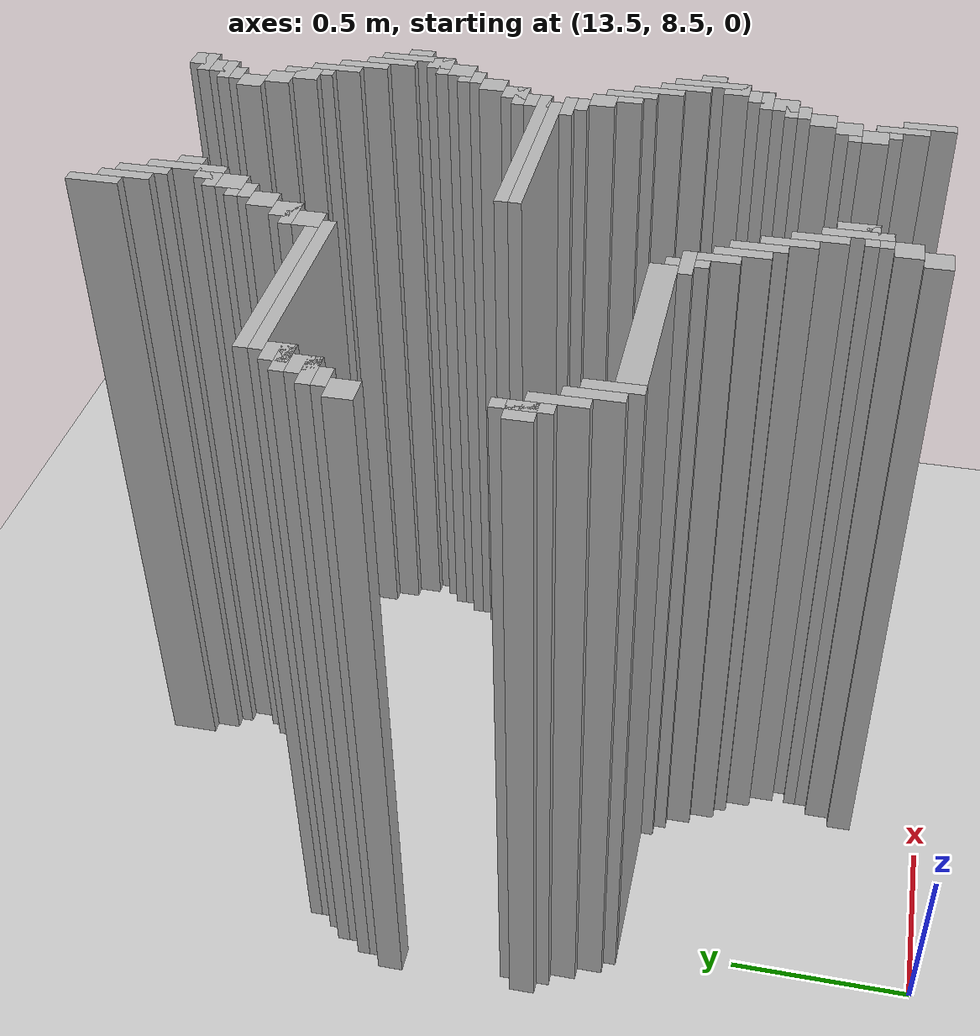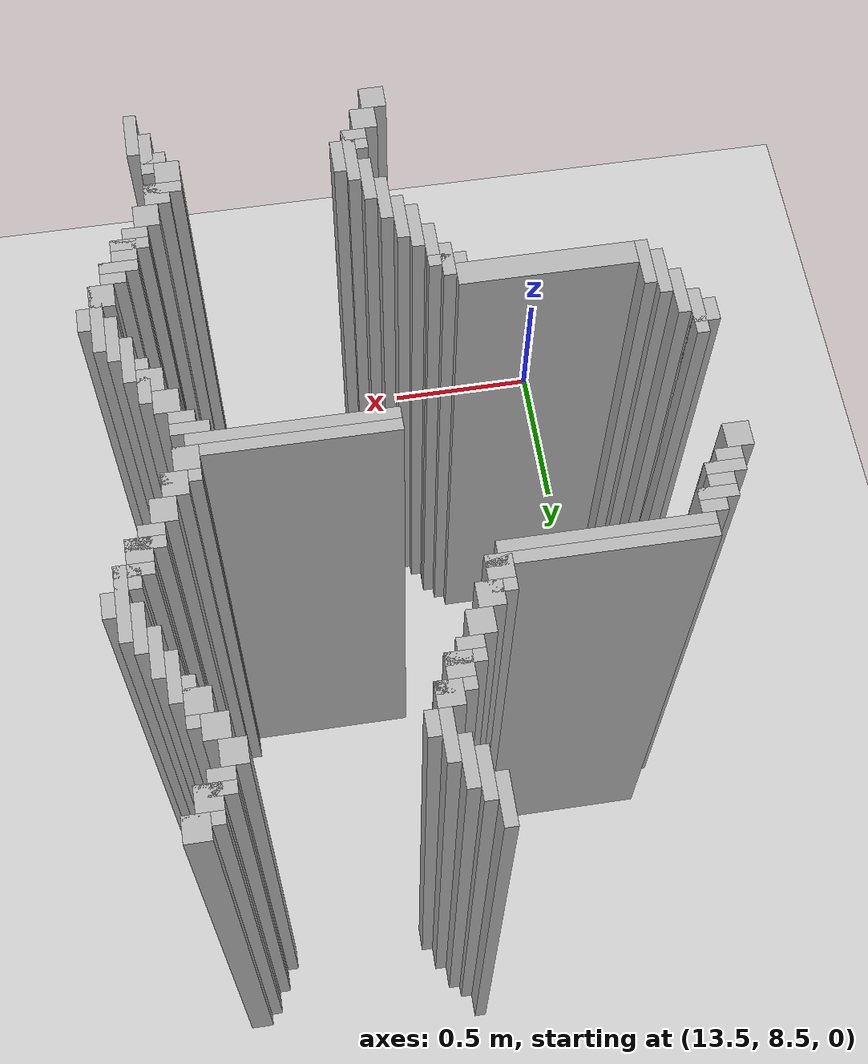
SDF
<sdf version="1.6">
 <world name="slam_world">
  <model name="ground_plane">
   <static>true</static>
   <link name="link">
    <collision name="collision">
     <geometry><plane><normal>0 0 1</normal><size>100 100</size></plane></geometry>
    </collision>
    <visual name="visual">
     <geometry><plane><normal>0 0 1</normal><size>100 100</size></plane></geometry>
     <material>
      <ambient>0.8 0.8 0.8 1</ambient>
      <diffuse>0.8 0.8 0.8 1</diffuse>
      <specular>0.8 0.8 0.8 1</specular>
     </material>
    </visual>
   </link>
  </model>
  <model name="wall_2226">
   <static>true</static>
   <pose>14.077726218097448 10.82366589327146 1.0 0 0 0</pose>
   <link name="link">
    <collision name="collision">
     <geometry><box><size>0.03480278422273782 0.13921113689095127 2.0</size></box></geometry>
    </collision>
    <visual name="visual">
     <geometry><box><size>0.03480278422273782 0.13921113689095127 2.0</size></box></geometry>
     <material><ambient>0.5 0.5 0.5 1</ambient><diffuse>0.7 0.7 0.7 1</diffuse></material>
    </visual>
   </link>
  </model>
  <model name="wall_2241">
   <static>true</static>
   <pose>14.112529002320185 10.754060324825986 1.0 0 0 0</pose>
   <link name="link">
    <collision name="collision">
     <geometry><box><size>0.03480278422273782 0.13921113689095127 2.0</size></box></geometry>
    </collision>
    <visual name="visual">
     <geometry><box><size>0.03480278422273782 0.13921113689095127 2.0</size></box></geometry>
     <material><ambient>0.5 0.5 0.5 1</ambient><diffuse>0.7 0.7 0.7 1</diffuse></material>
    </visual>
   </link>
  </model>
  <model name="wall_2242">
   <static>true</static>
   <pose>14.791183294663572 10.788863109048723 1.0 0 0 0</pose>
   <link name="link">
    <collision name="collision">
     <geometry><box><size>0.06960556844547564 0.06960556844547564 2.0</size></box></geometry>
    </collision>
    <visual name="visual">
     <geometry><box><size>0.06960556844547564 0.06960556844547564 2.0</size></box></geometry>
     <material><ambient>0.5 0.5 0.5 1</ambient><diffuse>0.7 0.7 0.7 1</diffuse></material>
    </visual>
   </link>
  </model>
  <model name="wall_2256">
   <static>true</static>
   <pose>14.147331786542923 10.719257540603248 1.0 0 0 0</pose>
   <link name="link">
    <collision name="collision">
     <geometry><box><size>0.03480278422273782 0.13921113689095127 2.0</size></box></geometry>
    </collision>
    <visual name="visual">
     <geometry><box><size>0.03480278422273782 0.13921113689095127 2.0</size></box></geometry>
     <material><ambient>0.5 0.5 0.5 1</ambient><diffuse>0.7 0.7 0.7 1</diffuse></material>
    </visual>
   </link>
  </model>
  <model name="wall_2257">
   <static>true</static>
   <pose>14.773781902552203 10.771461716937354 1.0 0 0 0</pose>
   <link name="link">
    <collision name="collision">
     <geometry><box><size>0.10440835266821345 0.03480278422273782 2.0</size></box></geometry>
    </collision>
    <visual name="visual">
     <geometry><box><size>0.10440835266821345 0.03480278422273782 2.0</size></box></geometry>
     <material><ambient>0.5 0.5 0.5 1</ambient><diffuse>0.7 0.7 0.7 1</diffuse></material>
    </visual>
   </link>
  </model>
  <model name="wall_2264">
   <static>true</static>
   <pose>14.756380510440835 10.719257540603248 1.0 0 0 0</pose>
   <link name="link">
    <collision name="collision">
     <geometry><box><size>0.06960556844547564 0.06960556844547564 2.0</size></box></geometry>
    </collision>
    <visual name="visual">
     <geometry><box><size>0.06960556844547564 0.06960556844547564 2.0</size></box></geometry>
     <material><ambient>0.5 0.5 0.5 1</ambient><diffuse>0.7 0.7 0.7 1</diffuse></material>
    </visual>
   </link>
  </model>
  <model name="wall_2278">
   <static>true</static>
   <pose>14.18213457076566 10.614849187935034 1.0 0 0 0</pose>
   <link name="link">
    <collision name="collision">
     <geometry><box><size>0.03480278422273782 0.2088167053364269 2.0</size></box></geometry>
    </collision>
    <visual name="visual">
     <geometry><box><size>0.03480278422273782 0.2088167053364269 2.0</size></box></geometry>
     <material><ambient>0.5 0.5 0.5 1</ambient><diffuse>0.7 0.7 0.7 1</diffuse></material>
    </visual>
   </link>
  </model>
  <model name="wall_2279">
   <static>true</static>
   <pose>14.738979118329466 10.70185614849188 1.0 0 0 0</pose>
   <link name="link">
    <collision name="collision">
     <geometry><box><size>0.10440835266821345 0.03480278422273782 2.0</size></box></geometry>
    </collision>
    <visual name="visual">
     <geometry><box><size>0.10440835266821345 0.03480278422273782 2.0</size></box></geometry>
     <material><ambient>0.5 0.5 0.5 1</ambient><diffuse>0.7 0.7 0.7 1</diffuse></material>
    </visual>
   </link>
  </model>
  <model name="wall_2286">
   <static>true</static>
   <pose>14.721577726218097 10.66705336426914 1.0 0 0 0</pose>
   <link name="link">
    <collision name="collision">
     <geometry><box><size>0.06960556844547564 0.03480278422273782 2.0</size></box></geometry>
    </collision>
    <visual name="visual">
     <geometry><box><size>0.06960556844547564 0.03480278422273782 2.0</size></box></geometry>
     <material><ambient>0.5 0.5 0.5 1</ambient><diffuse>0.7 0.7 0.7 1</diffuse></material>
    </visual>
   </link>
  </model>
  <model name="wall_2300">
   <static>true</static>
   <pose>14.2169373549884 10.614849187935034 1.0 0 0 0</pose>
   <link name="link">
    <collision name="collision">
     <geometry><box><size>0.03480278422273782 0.06960556844547564 2.0</size></box></geometry>
    </collision>
    <visual name="visual">
     <geometry><box><size>0.03480278422273782 0.06960556844547564 2.0</size></box></geometry>
     <material><ambient>0.5 0.5 0.5 1</ambient><diffuse>0.7 0.7 0.7 1</diffuse></material>
    </visual>
   </link>
  </model>
  <model name="wall_2301">
   <static>true</static>
   <pose>14.68677494199536 10.614849187935034 1.0 0 0 0</pose>
   <link name="link">
    <collision name="collision">
     <geometry><box><size>0.06960556844547564 0.06960556844547564 2.0</size></box></geometry>
    </collision>
    <visual name="visual">
     <geometry><box><size>0.06960556844547564 0.06960556844547564 2.0</size></box></geometry>
     <material><ambient>0.5 0.5 0.5 1</ambient><diffuse>0.7 0.7 0.7 1</diffuse></material>
    </visual>
   </link>
  </model>
  <model name="wall_2315">
   <static>true</static>
   <pose>14.164733178654291 10.54524361948956 1.0 0 0 0</pose>
   <link name="link">
    <collision name="collision">
     <geometry><box><size>0.06960556844547564 0.06960556844547564 2.0</size></box></geometry>
    </collision>
    <visual name="visual">
     <geometry><box><size>0.06960556844547564 0.06960556844547564 2.0</size></box></geometry>
     <material><ambient>0.5 0.5 0.5 1</ambient><diffuse>0.7 0.7 0.7 1</diffuse></material>
    </visual>
   </link>
  </model>
  <model name="wall_2316">
   <static>true</static>
   <pose>14.721577726218097 10.54524361948956 1.0 0 0 0</pose>
   <link name="link">
    <collision name="collision">
     <geometry><box><size>0.06960556844547564 0.06960556844547564 2.0</size></box></geometry>
    </collision>
    <visual name="visual">
     <geometry><box><size>0.06960556844547564 0.06960556844547564 2.0</size></box></geometry>
     <material><ambient>0.5 0.5 0.5 1</ambient><diffuse>0.7 0.7 0.7 1</diffuse></material>
    </visual>
   </link>
  </model>
  <model name="wall_2330">
   <static>true</static>
   <pose>14.147331786542923 10.52784222737819 1.0 0 0 0</pose>
   <link name="link">
    <collision name="collision">
     <geometry><box><size>0.10440835266821345 0.03480278422273782 2.0</size></box></geometry>
    </collision>
    <visual name="visual">
     <geometry><box><size>0.10440835266821345 0.03480278422273782 2.0</size></box></geometry>
     <material><ambient>0.5 0.5 0.5 1</ambient><diffuse>0.7 0.7 0.7 1</diffuse></material>
    </visual>
   </link>
  </model>
  <model name="wall_2331">
   <static>true</static>
   <pose>14.773781902552203 10.475638051044083 1.0 0 0 0</pose>
   <link name="link">
    <collision name="collision">
     <geometry><box><size>0.03480278422273782 0.13921113689095127 2.0</size></box></geometry>
    </collision>
    <visual name="visual">
     <geometry><box><size>0.03480278422273782 0.13921113689095127 2.0</size></box></geometry>
     <material><ambient>0.5 0.5 0.5 1</ambient><diffuse>0.7 0.7 0.7 1</diffuse></material>
    </visual>
   </link>
  </model>
  <model name="wall_2345">
   <static>true</static>
   <pose>14.129930394431554 10.475638051044083 1.0 0 0 0</pose>
   <link name="link">
    <collision name="collision">
     <geometry><box><size>0.06960556844547564 0.06960556844547564 2.0</size></box></geometry>
    </collision>
    <visual name="visual">
     <geometry><box><size>0.06960556844547564 0.06960556844547564 2.0</size></box></geometry>
     <material><ambient>0.5 0.5 0.5 1</ambient><diffuse>0.7 0.7 0.7 1</diffuse></material>
    </visual>
   </link>
  </model>
  <model name="wall_2346">
   <static>true</static>
   <pose>14.756380510440835 10.475638051044083 1.0 0 0 0</pose>
   <link name="link">
    <collision name="collision">
     <geometry><box><size>0.06960556844547564 0.06960556844547564 2.0</size></box></geometry>
    </collision>
    <visual name="visual">
     <geometry><box><size>0.06960556844547564 0.06960556844547564 2.0</size></box></geometry>
     <material><ambient>0.5 0.5 0.5 1</ambient><diffuse>0.7 0.7 0.7 1</diffuse></material>
    </visual>
   </link>
  </model>
  <model name="wall_2360">
   <static>true</static>
   <pose>14.112529002320185 10.458236658932714 1.0 0 0 0</pose>
   <link name="link">
    <collision name="collision">
     <geometry><box><size>0.10440835266821345 0.03480278422273782 2.0</size></box></geometry>
    </collision>
    <visual name="visual">
     <geometry><box><size>0.10440835266821345 0.03480278422273782 2.0</size></box></geometry>
     <material><ambient>0.5 0.5 0.5 1</ambient><diffuse>0.7 0.7 0.7 1</diffuse></material>
    </visual>
   </link>
  </model>
  <model name="wall_2361">
   <static>true</static>
   <pose>14.80858468677494 10.406032482598608 1.0 0 0 0</pose>
   <link name="link">
    <collision name="collision">
     <geometry><box><size>0.03480278422273782 0.13921113689095127 2.0</size></box></geometry>
    </collision>
    <visual name="visual">
     <geometry><box><size>0.03480278422273782 0.13921113689095127 2.0</size></box></geometry>
     <material><ambient>0.5 0.5 0.5 1</ambient><diffuse>0.7 0.7 0.7 1</diffuse></material>
    </visual>
   </link>
  </model>
  <model name="wall_2366">
   <static>true</static>
   <pose>14.095127610208817 10.423433874709977 1.0 0 0 0</pose>
   <link name="link">
    <collision name="collision">
     <geometry><box><size>0.06960556844547564 0.03480278422273782 2.0</size></box></geometry>
    </collision>
    <visual name="visual">
     <geometry><box><size>0.06960556844547564 0.03480278422273782 2.0</size></box></geometry>
     <material><ambient>0.5 0.5 0.5 1</ambient><diffuse>0.7 0.7 0.7 1</diffuse></material>
    </visual>
   </link>
  </model>
  <model name="wall_2380">
   <static>true</static>
   <pose>14.06032482598608 10.37122969837587 1.0 0 0 0</pose>
   <link name="link">
    <collision name="collision">
     <geometry><box><size>0.06960556844547564 0.06960556844547564 2.0</size></box></geometry>
    </collision>
    <visual name="visual">
     <geometry><box><size>0.06960556844547564 0.06960556844547564 2.0</size></box></geometry>
     <material><ambient>0.5 0.5 0.5 1</ambient><diffuse>0.7 0.7 0.7 1</diffuse></material>
    </visual>
   </link>
  </model>
  <model name="wall_2381">
   <static>true</static>
   <pose>14.84338747099768 10.336426914153131 1.0 0 0 0</pose>
   <link name="link">
    <collision name="collision">
     <geometry><box><size>0.03480278422273782 0.13921113689095127 2.0</size></box></geometry>
    </collision>
    <visual name="visual">
     <geometry><box><size>0.03480278422273782 0.13921113689095127 2.0</size></box></geometry>
     <material><ambient>0.5 0.5 0.5 1</ambient><diffuse>0.7 0.7 0.7 1</diffuse></material>
    </visual>
   </link>
  </model>
  <model name="wall_2395">
   <static>true</static>
   <pose>14.02552204176334 10.301624129930394 1.0 0 0 0</pose>
   <link name="link">
    <collision name="collision">
     <geometry><box><size>0.06960556844547564 0.06960556844547564 2.0</size></box></geometry>
    </collision>
    <visual name="visual">
     <geometry><box><size>0.06960556844547564 0.06960556844547564 2.0</size></box></geometry>
     <material><ambient>0.5 0.5 0.5 1</ambient><diffuse>0.7 0.7 0.7 1</diffuse></material>
    </visual>
   </link>
  </model>
  <model name="wall_2396">
   <static>true</static>
   <pose>14.878190255220417 10.266821345707656 1.0 0 0 0</pose>
   <link name="link">
    <collision name="collision">
     <geometry><box><size>0.03480278422273782 0.13921113689095127 2.0</size></box></geometry>
    </collision>
    <visual name="visual">
     <geometry><box><size>0.03480278422273782 0.13921113689095127 2.0</size></box></geometry>
     <material><ambient>0.5 0.5 0.5 1</ambient><diffuse>0.7 0.7 0.7 1</diffuse></material>
    </visual>
   </link>
  </model>
  <model name="wall_2410">
   <static>true</static>
   <pose>14.008120649651971 10.284222737819025 1.0 0 0 0</pose>
   <link name="link">
    <collision name="collision">
     <geometry><box><size>0.10440835266821345 0.03480278422273782 2.0</size></box></geometry>
    </collision>
    <visual name="visual">
     <geometry><box><size>0.10440835266821345 0.03480278422273782 2.0</size></box></geometry>
     <material><ambient>0.5 0.5 0.5 1</ambient><diffuse>0.7 0.7 0.7 1</diffuse></material>
    </visual>
   </link>
  </model>
  <model name="wall_2411">
   <static>true</static>
   <pose>14.912993039443155 10.19721577726218 1.0 0 0 0</pose>
   <link name="link">
    <collision name="collision">
     <geometry><box><size>0.03480278422273782 0.2088167053364269 2.0</size></box></geometry>
    </collision>
    <visual name="visual">
     <geometry><box><size>0.03480278422273782 0.2088167053364269 2.0</size></box></geometry>
     <material><ambient>0.5 0.5 0.5 1</ambient><diffuse>0.7 0.7 0.7 1</diffuse></material>
    </visual>
   </link>
  </model>
  <model name="wall_2416">
   <static>true</static>
   <pose>13.990719257540603 10.232018561484919 1.0 0 0 0</pose>
   <link name="link">
    <collision name="collision">
     <geometry><box><size>0.06960556844547564 0.06960556844547564 2.0</size></box></geometry>
    </collision>
    <visual name="visual">
     <geometry><box><size>0.06960556844547564 0.06960556844547564 2.0</size></box></geometry>
     <material><ambient>0.5 0.5 0.5 1</ambient><diffuse>0.7 0.7 0.7 1</diffuse></material>
    </visual>
   </link>
  </model>
  <model name="wall_2431">
   <static>true</static>
   <pose>13.729698375870068 10.214617169373549 1.0 0 0 0</pose>
   <link name="link">
    <collision name="collision">
     <geometry><box><size>0.5916473317865429 0.03480278422273782 2.0</size></box></geometry>
    </collision>
    <visual name="visual">
     <geometry><box><size>0.5916473317865429 0.03480278422273782 2.0</size></box></geometry>
     <material><ambient>0.5 0.5 0.5 1</ambient><diffuse>0.7 0.7 0.7 1</diffuse></material>
    </visual>
   </link>
  </model>
  <model name="wall_2432">
   <static>true</static>
   <pose>14.947795823665892 10.19721577726218 1.0 0 0 0</pose>
   <link name="link">
    <collision name="collision">
     <geometry><box><size>0.03480278422273782 0.06960556844547564 2.0</size></box></geometry>
    </collision>
    <visual name="visual">
     <geometry><box><size>0.03480278422273782 0.06960556844547564 2.0</size></box></geometry>
     <material><ambient>0.5 0.5 0.5 1</ambient><diffuse>0.7 0.7 0.7 1</diffuse></material>
    </visual>
   </link>
  </model>
  <model name="wall_2437">
   <static>true</static>
   <pose>13.7122969837587 10.179814385150811 1.0 0 0 0</pose>
   <link name="link">
    <collision name="collision">
     <geometry><box><size>0.5568445475638051 0.03480278422273782 2.0</size></box></geometry>
    </collision>
    <visual name="visual">
     <geometry><box><size>0.5568445475638051 0.03480278422273782 2.0</size></box></geometry>
     <material><ambient>0.5 0.5 0.5 1</ambient><diffuse>0.7 0.7 0.7 1</diffuse></material>
    </visual>
   </link>
  </model>
  <model name="wall_2450">
   <static>true</static>
   <pose>13.433874709976797 10.127610208816705 1.0 0 0 0</pose>
   <link name="link">
    <collision name="collision">
     <geometry><box><size>0.06960556844547564 0.06960556844547564 2.0</size></box></geometry>
    </collision>
    <visual name="visual">
     <geometry><box><size>0.06960556844547564 0.06960556844547564 2.0</size></box></geometry>
     <material><ambient>0.5 0.5 0.5 1</ambient><diffuse>0.7 0.7 0.7 1</diffuse></material>
    </visual>
   </link>
  </model>
  <model name="wall_2451">
   <static>true</static>
   <pose>14.895591647331786 10.127610208816705 1.0 0 0 0</pose>
   <link name="link">
    <collision name="collision">
     <geometry><box><size>0.06960556844547564 0.06960556844547564 2.0</size></box></geometry>
    </collision>
    <visual name="visual">
     <geometry><box><size>0.06960556844547564 0.06960556844547564 2.0</size></box></geometry>
     <material><ambient>0.5 0.5 0.5 1</ambient><diffuse>0.7 0.7 0.7 1</diffuse></material>
    </visual>
   </link>
  </model>
  <model name="wall_2464">
   <static>true</static>
   <pose>13.416473317865428 10.110208816705336 1.0 0 0 0</pose>
   <link name="link">
    <collision name="collision">
     <geometry><box><size>0.10440835266821345 0.03480278422273782 2.0</size></box></geometry>
    </collision>
    <visual name="visual">
     <geometry><box><size>0.10440835266821345 0.03480278422273782 2.0</size></box></geometry>
     <material><ambient>0.5 0.5 0.5 1</ambient><diffuse>0.7 0.7 0.7 1</diffuse></material>
    </visual>
   </link>
  </model>
  <model name="wall_2465">
   <static>true</static>
   <pose>14.878190255220417 10.110208816705336 1.0 0 0 0</pose>
   <link name="link">
    <collision name="collision">
     <geometry><box><size>0.10440835266821345 0.03480278422273782 2.0</size></box></geometry>
    </collision>
    <visual name="visual">
     <geometry><box><size>0.10440835266821345 0.03480278422273782 2.0</size></box></geometry>
     <material><ambient>0.5 0.5 0.5 1</ambient><diffuse>0.7 0.7 0.7 1</diffuse></material>
    </visual>
   </link>
  </model>
  <model name="wall_2478">
   <static>true</static>
   <pose>13.39907192575406 10.058004640371228 1.0 0 0 0</pose>
   <link name="link">
    <collision name="collision">
     <geometry><box><size>0.06960556844547564 0.06960556844547564 2.0</size></box></geometry>
    </collision>
    <visual name="visual">
     <geometry><box><size>0.06960556844547564 0.06960556844547564 2.0</size></box></geometry>
     <material><ambient>0.5 0.5 0.5 1</ambient><diffuse>0.7 0.7 0.7 1</diffuse></material>
    </visual>
   </link>
  </model>
  <model name="wall_2479">
   <static>true</static>
   <pose>14.860788863109049 10.058004640371228 1.0 0 0 0</pose>
   <link name="link">
    <collision name="collision">
     <geometry><box><size>0.06960556844547564 0.06960556844547564 2.0</size></box></geometry>
    </collision>
    <visual name="visual">
     <geometry><box><size>0.06960556844547564 0.06960556844547564 2.0</size></box></geometry>
     <material><ambient>0.5 0.5 0.5 1</ambient><diffuse>0.7 0.7 0.7 1</diffuse></material>
    </visual>
   </link>
  </model>
  <model name="wall_2492">
   <static>true</static>
   <pose>13.38167053364269 10.04060324825986 1.0 0 0 0</pose>
   <link name="link">
    <collision name="collision">
     <geometry><box><size>0.10440835266821345 0.03480278422273782 2.0</size></box></geometry>
    </collision>
    <visual name="visual">
     <geometry><box><size>0.10440835266821345 0.03480278422273782 2.0</size></box></geometry>
     <material><ambient>0.5 0.5 0.5 1</ambient><diffuse>0.7 0.7 0.7 1</diffuse></material>
    </visual>
   </link>
  </model>
  <model name="wall_2493">
   <static>true</static>
   <pose>14.84338747099768 10.04060324825986 1.0 0 0 0</pose>
   <link name="link">
    <collision name="collision">
     <geometry><box><size>0.10440835266821345 0.03480278422273782 2.0</size></box></geometry>
    </collision>
    <visual name="visual">
     <geometry><box><size>0.10440835266821345 0.03480278422273782 2.0</size></box></geometry>
     <material><ambient>0.5 0.5 0.5 1</ambient><diffuse>0.7 0.7 0.7 1</diffuse></material>
    </visual>
   </link>
  </model>
  <model name="wall_2501">
   <static>true</static>
   <pose>13.364269141531322 10.005800464037122 1.0 0 0 0</pose>
   <link name="link">
    <collision name="collision">
     <geometry><box><size>0.06960556844547564 0.03480278422273782 2.0</size></box></geometry>
    </collision>
    <visual name="visual">
     <geometry><box><size>0.06960556844547564 0.03480278422273782 2.0</size></box></geometry>
     <material><ambient>0.5 0.5 0.5 1</ambient><diffuse>0.7 0.7 0.7 1</diffuse></material>
    </visual>
   </link>
  </model>
  <model name="wall_2502">
   <static>true</static>
   <pose>14.825986078886311 10.005800464037122 1.0 0 0 0</pose>
   <link name="link">
    <collision name="collision">
     <geometry><box><size>0.06960556844547564 0.03480278422273782 2.0</size></box></geometry>
    </collision>
    <visual name="visual">
     <geometry><box><size>0.06960556844547564 0.03480278422273782 2.0</size></box></geometry>
     <material><ambient>0.5 0.5 0.5 1</ambient><diffuse>0.7 0.7 0.7 1</diffuse></material>
    </visual>
   </link>
  </model>
  <model name="wall_2515">
   <static>true</static>
   <pose>13.329466357308585 9.953596287703016 1.0 0 0 0</pose>
   <link name="link">
    <collision name="collision">
     <geometry><box><size>0.06960556844547564 0.06960556844547564 2.0</size></box></geometry>
    </collision>
    <visual name="visual">
     <geometry><box><size>0.06960556844547564 0.06960556844547564 2.0</size></box></geometry>
     <material><ambient>0.5 0.5 0.5 1</ambient><diffuse>0.7 0.7 0.7 1</diffuse></material>
    </visual>
   </link>
  </model>
  <model name="wall_2516">
   <static>true</static>
   <pose>14.791183294663572 9.953596287703016 1.0 0 0 0</pose>
   <link name="link">
    <collision name="collision">
     <geometry><box><size>0.06960556844547564 0.06960556844547564 2.0</size></box></geometry>
    </collision>
    <visual name="visual">
     <geometry><box><size>0.06960556844547564 0.06960556844547564 2.0</size></box></geometry>
     <material><ambient>0.5 0.5 0.5 1</ambient><diffuse>0.7 0.7 0.7 1</diffuse></material>
    </visual>
   </link>
  </model>
  <model name="wall_2530">
   <static>true</static>
   <pose>14.756380510440835 9.88399071925754 1.0 0 0 0</pose>
   <link name="link">
    <collision name="collision">
     <geometry><box><size>0.06960556844547564 0.06960556844547564 2.0</size></box></geometry>
    </collision>
    <visual name="visual">
     <geometry><box><size>0.06960556844547564 0.06960556844547564 2.0</size></box></geometry>
     <material><ambient>0.5 0.5 0.5 1</ambient><diffuse>0.7 0.7 0.7 1</diffuse></material>
    </visual>
   </link>
  </model>
  <model name="wall_2544">
   <static>true</static>
   <pose>14.738979118329466 9.86658932714617 1.0 0 0 0</pose>
   <link name="link">
    <collision name="collision">
     <geometry><box><size>0.10440835266821345 0.03480278422273782 2.0</size></box></geometry>
    </collision>
    <visual name="visual">
     <geometry><box><size>0.10440835266821345 0.03480278422273782 2.0</size></box></geometry>
     <material><ambient>0.5 0.5 0.5 1</ambient><diffuse>0.7 0.7 0.7 1</diffuse></material>
    </visual>
   </link>
  </model>
  <model name="wall_2553">
   <static>true</static>
   <pose>14.721577726218097 9.814385150812065 1.0 0 0 0</pose>
   <link name="link">
    <collision name="collision">
     <geometry><box><size>0.06960556844547564 0.06960556844547564 2.0</size></box></geometry>
    </collision>
    <visual name="visual">
     <geometry><box><size>0.06960556844547564 0.06960556844547564 2.0</size></box></geometry>
     <material><ambient>0.5 0.5 0.5 1</ambient><diffuse>0.7 0.7 0.7 1</diffuse></material>
    </visual>
   </link>
  </model>
  <model name="wall_2565">
   <static>true</static>
   <pose>14.460556844547563 9.796983758700696 1.0 0 0 0</pose>
   <link name="link">
    <collision name="collision">
     <geometry><box><size>0.5916473317865429 0.03480278422273782 2.0</size></box></geometry>
    </collision>
    <visual name="visual">
     <geometry><box><size>0.5916473317865429 0.03480278422273782 2.0</size></box></geometry>
     <material><ambient>0.5 0.5 0.5 1</ambient><diffuse>0.7 0.7 0.7 1</diffuse></material>
    </visual>
   </link>
  </model>
  <model name="wall_2574">
   <static>true</static>
   <pose>14.443155452436194 9.762180974477959 1.0 0 0 0</pose>
   <link name="link">
    <collision name="collision">
     <geometry><box><size>0.5568445475638051 0.03480278422273782 2.0</size></box></geometry>
    </collision>
    <visual name="visual">
     <geometry><box><size>0.5568445475638051 0.03480278422273782 2.0</size></box></geometry>
     <material><ambient>0.5 0.5 0.5 1</ambient><diffuse>0.7 0.7 0.7 1</diffuse></material>
    </visual>
   </link>
  </model>
  <model name="wall_2588">
   <static>true</static>
   <pose>14.704176334106728 9.72737819025522 1.0 0 0 0</pose>
   <link name="link">
    <collision name="collision">
     <geometry><box><size>0.10440835266821345 0.03480278422273782 2.0</size></box></geometry>
    </collision>
    <visual name="visual">
     <geometry><box><size>0.10440835266821345 0.03480278422273782 2.0</size></box></geometry>
     <material><ambient>0.5 0.5 0.5 1</ambient><diffuse>0.7 0.7 0.7 1</diffuse></material>
    </visual>
   </link>
  </model>
  <model name="wall_2599">
   <static>true</static>
   <pose>14.721577726218097 9.692575406032482 1.0 0 0 0</pose>
   <link name="link">
    <collision name="collision">
     <geometry><box><size>0.06960556844547564 0.03480278422273782 2.0</size></box></geometry>
    </collision>
    <visual name="visual">
     <geometry><box><size>0.06960556844547564 0.03480278422273782 2.0</size></box></geometry>
     <material><ambient>0.5 0.5 0.5 1</ambient><diffuse>0.7 0.7 0.7 1</diffuse></material>
    </visual>
   </link>
  </model>
  <model name="wall_2613">
   <static>true</static>
   <pose>14.756380510440835 9.640371229698376 1.0 0 0 0</pose>
   <link name="link">
    <collision name="collision">
     <geometry><box><size>0.06960556844547564 0.06960556844547564 2.0</size></box></geometry>
    </collision>
    <visual name="visual">
     <geometry><box><size>0.06960556844547564 0.06960556844547564 2.0</size></box></geometry>
     <material><ambient>0.5 0.5 0.5 1</ambient><diffuse>0.7 0.7 0.7 1</diffuse></material>
    </visual>
   </link>
  </model>
  <model name="wall_2626">
   <static>true</static>
   <pose>13.346867749419953 9.5707656612529 1.0 0 0 0</pose>
   <link name="link">
    <collision name="collision">
     <geometry><box><size>0.03480278422273782 0.13921113689095127 2.0</size></box></geometry>
    </collision>
    <visual name="visual">
     <geometry><box><size>0.03480278422273782 0.13921113689095127 2.0</size></box></geometry>
     <material><ambient>0.5 0.5 0.5 1</ambient><diffuse>0.7 0.7 0.7 1</diffuse></material>
    </visual>
   </link>
  </model>
  <model name="wall_2627">
   <static>true</static>
   <pose>14.80858468677494 9.5707656612529 1.0 0 0 0</pose>
   <link name="link">
    <collision name="collision">
     <geometry><box><size>0.03480278422273782 0.13921113689095127 2.0</size></box></geometry>
    </collision>
    <visual name="visual">
     <geometry><box><size>0.03480278422273782 0.13921113689095127 2.0</size></box></geometry>
     <material><ambient>0.5 0.5 0.5 1</ambient><diffuse>0.7 0.7 0.7 1</diffuse></material>
    </visual>
   </link>
  </model>
  <model name="wall_2640">
   <static>true</static>
   <pose>13.329466357308585 9.5707656612529 1.0 0 0 0</pose>
   <link name="link">
    <collision name="collision">
     <geometry><box><size>0.06960556844547564 0.06960556844547564 2.0</size></box></geometry>
    </collision>
    <visual name="visual">
     <geometry><box><size>0.06960556844547564 0.06960556844547564 2.0</size></box></geometry>
     <material><ambient>0.5 0.5 0.5 1</ambient><diffuse>0.7 0.7 0.7 1</diffuse></material>
    </visual>
   </link>
  </model>
  <model name="wall_2641">
   <static>true</static>
   <pose>14.791183294663572 9.5707656612529 1.0 0 0 0</pose>
   <link name="link">
    <collision name="collision">
     <geometry><box><size>0.06960556844547564 0.06960556844547564 2.0</size></box></geometry>
    </collision>
    <visual name="visual">
     <geometry><box><size>0.06960556844547564 0.06960556844547564 2.0</size></box></geometry>
     <material><ambient>0.5 0.5 0.5 1</ambient><diffuse>0.7 0.7 0.7 1</diffuse></material>
    </visual>
   </link>
  </model>
  <model name="wall_2654">
   <static>true</static>
   <pose>13.38167053364269 9.501160092807424 1.0 0 0 0</pose>
   <link name="link">
    <collision name="collision">
     <geometry><box><size>0.03480278422273782 0.13921113689095127 2.0</size></box></geometry>
    </collision>
    <visual name="visual">
     <geometry><box><size>0.03480278422273782 0.13921113689095127 2.0</size></box></geometry>
     <material><ambient>0.5 0.5 0.5 1</ambient><diffuse>0.7 0.7 0.7 1</diffuse></material>
    </visual>
   </link>
  </model>
  <model name="wall_2655">
   <static>true</static>
   <pose>14.84338747099768 9.501160092807424 1.0 0 0 0</pose>
   <link name="link">
    <collision name="collision">
     <geometry><box><size>0.03480278422273782 0.13921113689095127 2.0</size></box></geometry>
    </collision>
    <visual name="visual">
     <geometry><box><size>0.03480278422273782 0.13921113689095127 2.0</size></box></geometry>
     <material><ambient>0.5 0.5 0.5 1</ambient><diffuse>0.7 0.7 0.7 1</diffuse></material>
    </visual>
   </link>
  </model>
  <model name="wall_2673">
   <static>true</static>
   <pose>13.416473317865428 9.431554524361948 1.0 0 0 0</pose>
   <link name="link">
    <collision name="collision">
     <geometry><box><size>0.03480278422273782 0.13921113689095127 2.0</size></box></geometry>
    </collision>
    <visual name="visual">
     <geometry><box><size>0.03480278422273782 0.13921113689095127 2.0</size></box></geometry>
     <material><ambient>0.5 0.5 0.5 1</ambient><diffuse>0.7 0.7 0.7 1</diffuse></material>
    </visual>
   </link>
  </model>
  <model name="wall_2674">
   <static>true</static>
   <pose>14.878190255220417 9.431554524361948 1.0 0 0 0</pose>
   <link name="link">
    <collision name="collision">
     <geometry><box><size>0.03480278422273782 0.13921113689095127 2.0</size></box></geometry>
    </collision>
    <visual name="visual">
     <geometry><box><size>0.03480278422273782 0.13921113689095127 2.0</size></box></geometry>
     <material><ambient>0.5 0.5 0.5 1</ambient><diffuse>0.7 0.7 0.7 1</diffuse></material>
    </visual>
   </link>
  </model>
  <model name="wall_2687">
   <static>true</static>
   <pose>13.451276102088167 9.39675174013921 1.0 0 0 0</pose>
   <link name="link">
    <collision name="collision">
     <geometry><box><size>0.03480278422273782 0.13921113689095127 2.0</size></box></geometry>
    </collision>
    <visual name="visual">
     <geometry><box><size>0.03480278422273782 0.13921113689095127 2.0</size></box></geometry>
     <material><ambient>0.5 0.5 0.5 1</ambient><diffuse>0.7 0.7 0.7 1</diffuse></material>
    </visual>
   </link>
  </model>
  <model name="wall_2688">
   <static>true</static>
   <pose>14.912993039443155 9.361948955916473 1.0 0 0 0</pose>
   <link name="link">
    <collision name="collision">
     <geometry><box><size>0.03480278422273782 0.2088167053364269 2.0</size></box></geometry>
    </collision>
    <visual name="visual">
     <geometry><box><size>0.03480278422273782 0.2088167053364269 2.0</size></box></geometry>
     <material><ambient>0.5 0.5 0.5 1</ambient><diffuse>0.7 0.7 0.7 1</diffuse></material>
    </visual>
   </link>
  </model>
  <model name="wall_2705">
   <static>true</static>
   <pose>13.7122969837587 9.361948955916473 1.0 0 0 0</pose>
   <link name="link">
    <collision name="collision">
     <geometry><box><size>0.4872389791183295 0.06960556844547564 2.0</size></box></geometry>
    </collision>
    <visual name="visual">
     <geometry><box><size>0.4872389791183295 0.06960556844547564 2.0</size></box></geometry>
     <material><ambient>0.5 0.5 0.5 1</ambient><diffuse>0.7 0.7 0.7 1</diffuse></material>
    </visual>
   </link>
  </model>
  <model name="wall_2706">
   <static>true</static>
   <pose>14.947795823665892 9.361948955916473 1.0 0 0 0</pose>
   <link name="link">
    <collision name="collision">
     <geometry><box><size>0.03480278422273782 0.06960556844547564 2.0</size></box></geometry>
    </collision>
    <visual name="visual">
     <geometry><box><size>0.03480278422273782 0.06960556844547564 2.0</size></box></geometry>
     <material><ambient>0.5 0.5 0.5 1</ambient><diffuse>0.7 0.7 0.7 1</diffuse></material>
    </visual>
   </link>
  </model>
  <model name="wall_2716">
   <static>true</static>
   <pose>13.973317865429234 9.309744779582367 1.0 0 0 0</pose>
   <link name="link">
    <collision name="collision">
     <geometry><box><size>0.03480278422273782 0.10440835266821345 2.0</size></box></geometry>
    </collision>
    <visual name="visual">
     <geometry><box><size>0.03480278422273782 0.10440835266821345 2.0</size></box></geometry>
     <material><ambient>0.5 0.5 0.5 1</ambient><diffuse>0.7 0.7 0.7 1</diffuse></material>
    </visual>
   </link>
  </model>
  <model name="wall_2731">
   <static>true</static>
   <pose>13.973317865429234 9.309744779582367 1.0 0 0 0</pose>
   <link name="link">
    <collision name="collision">
     <geometry><box><size>0.10440835266821345 0.03480278422273782 2.0</size></box></geometry>
    </collision>
    <visual name="visual">
     <geometry><box><size>0.10440835266821345 0.03480278422273782 2.0</size></box></geometry>
     <material><ambient>0.5 0.5 0.5 1</ambient><diffuse>0.7 0.7 0.7 1</diffuse></material>
    </visual>
   </link>
  </model>
  <model name="wall_2732">
   <static>true</static>
   <pose>14.895591647331786 9.292343387470996 1.0 0 0 0</pose>
   <link name="link">
    <collision name="collision">
     <geometry><box><size>0.06960556844547564 0.06960556844547564 2.0</size></box></geometry>
    </collision>
    <visual name="visual">
     <geometry><box><size>0.06960556844547564 0.06960556844547564 2.0</size></box></geometry>
     <material><ambient>0.5 0.5 0.5 1</ambient><diffuse>0.7 0.7 0.7 1</diffuse></material>
    </visual>
   </link>
  </model>
  <model name="wall_2745">
   <static>true</static>
   <pose>14.008120649651971 9.24013921113689 1.0 0 0 0</pose>
   <link name="link">
    <collision name="collision">
     <geometry><box><size>0.03480278422273782 0.10440835266821345 2.0</size></box></geometry>
    </collision>
    <visual name="visual">
     <geometry><box><size>0.03480278422273782 0.10440835266821345 2.0</size></box></geometry>
     <material><ambient>0.5 0.5 0.5 1</ambient><diffuse>0.7 0.7 0.7 1</diffuse></material>
    </visual>
   </link>
  </model>
  <model name="wall_2760">
   <static>true</static>
   <pose>14.042923433874709 9.187935034802784 1.0 0 0 0</pose>
   <link name="link">
    <collision name="collision">
     <geometry><box><size>0.03480278422273782 0.13921113689095127 2.0</size></box></geometry>
    </collision>
    <visual name="visual">
     <geometry><box><size>0.03480278422273782 0.13921113689095127 2.0</size></box></geometry>
     <material><ambient>0.5 0.5 0.5 1</ambient><diffuse>0.7 0.7 0.7 1</diffuse></material>
    </visual>
   </link>
  </model>
  <model name="wall_2761">
   <static>true</static>
   <pose>14.860788863109049 9.222737819025522 1.0 0 0 0</pose>
   <link name="link">
    <collision name="collision">
     <geometry><box><size>0.06960556844547564 0.06960556844547564 2.0</size></box></geometry>
    </collision>
    <visual name="visual">
     <geometry><box><size>0.06960556844547564 0.06960556844547564 2.0</size></box></geometry>
     <material><ambient>0.5 0.5 0.5 1</ambient><diffuse>0.7 0.7 0.7 1</diffuse></material>
    </visual>
   </link>
  </model>
  <model name="wall_2776">
   <static>true</static>
   <pose>14.077726218097448 9.153132250580047 1.0 0 0 0</pose>
   <link name="link">
    <collision name="collision">
     <geometry><box><size>0.03480278422273782 0.13921113689095127 2.0</size></box></geometry>
    </collision>
    <visual name="visual">
     <geometry><box><size>0.03480278422273782 0.13921113689095127 2.0</size></box></geometry>
     <material><ambient>0.5 0.5 0.5 1</ambient><diffuse>0.7 0.7 0.7 1</diffuse></material>
    </visual>
   </link>
  </model>
  <model name="wall_2777">
   <static>true</static>
   <pose>14.84338747099768 9.205336426914153 1.0 0 0 0</pose>
   <link name="link">
    <collision name="collision">
     <geometry><box><size>0.10440835266821345 0.03480278422273782 2.0</size></box></geometry>
    </collision>
    <visual name="visual">
     <geometry><box><size>0.10440835266821345 0.03480278422273782 2.0</size></box></geometry>
     <material><ambient>0.5 0.5 0.5 1</ambient><diffuse>0.7 0.7 0.7 1</diffuse></material>
    </visual>
   </link>
  </model>
  <model name="wall_2789">
   <static>true</static>
   <pose>14.825986078886311 9.153132250580047 1.0 0 0 0</pose>
   <link name="link">
    <collision name="collision">
     <geometry><box><size>0.06960556844547564 0.06960556844547564 2.0</size></box></geometry>
    </collision>
    <visual name="visual">
     <geometry><box><size>0.06960556844547564 0.06960556844547564 2.0</size></box></geometry>
     <material><ambient>0.5 0.5 0.5 1</ambient><diffuse>0.7 0.7 0.7 1</diffuse></material>
    </visual>
   </link>
  </model>
  <model name="wall_2804">
   <static>true</static>
   <pose>14.112529002320185 9.08352668213457 1.0 0 0 0</pose>
   <link name="link">
    <collision name="collision">
     <geometry><box><size>0.03480278422273782 0.13921113689095127 2.0</size></box></geometry>
    </collision>
    <visual name="visual">
     <geometry><box><size>0.03480278422273782 0.13921113689095127 2.0</size></box></geometry>
     <material><ambient>0.5 0.5 0.5 1</ambient><diffuse>0.7 0.7 0.7 1</diffuse></material>
    </visual>
   </link>
  </model>
  <model name="wall_2805">
   <static>true</static>
   <pose>14.80858468677494 9.135730858468676 1.0 0 0 0</pose>
   <link name="link">
    <collision name="collision">
     <geometry><box><size>0.10440835266821345 0.03480278422273782 2.0</size></box></geometry>
    </collision>
    <visual name="visual">
     <geometry><box><size>0.10440835266821345 0.03480278422273782 2.0</size></box></geometry>
     <material><ambient>0.5 0.5 0.5 1</ambient><diffuse>0.7 0.7 0.7 1</diffuse></material>
    </visual>
   </link>
  </model>
  <model name="wall_2814">
   <static>true</static>
   <pose>14.791183294663572 9.100928074245939 1.0 0 0 0</pose>
   <link name="link">
    <collision name="collision">
     <geometry><box><size>0.06960556844547564 0.03480278422273782 2.0</size></box></geometry>
    </collision>
    <visual name="visual">
     <geometry><box><size>0.06960556844547564 0.03480278422273782 2.0</size></box></geometry>
     <material><ambient>0.5 0.5 0.5 1</ambient><diffuse>0.7 0.7 0.7 1</diffuse></material>
    </visual>
   </link>
  </model>
  <model name="wall_2829">
   <static>true</static>
   <pose>14.147331786542923 9.013921113689095 1.0 0 0 0</pose>
   <link name="link">
    <collision name="collision">
     <geometry><box><size>0.03480278422273782 0.13921113689095127 2.0</size></box></geometry>
    </collision>
    <visual name="visual">
     <geometry><box><size>0.03480278422273782 0.13921113689095127 2.0</size></box></geometry>
     <material><ambient>0.5 0.5 0.5 1</ambient><diffuse>0.7 0.7 0.7 1</diffuse></material>
    </visual>
   </link>
  </model>
  <model name="wall_2830">
   <static>true</static>
   <pose>14.756380510440835 9.048723897911833 1.0 0 0 0</pose>
   <link name="link">
    <collision name="collision">
     <geometry><box><size>0.06960556844547564 0.06960556844547564 2.0</size></box></geometry>
    </collision>
    <visual name="visual">
     <geometry><box><size>0.06960556844547564 0.06960556844547564 2.0</size></box></geometry>
     <material><ambient>0.5 0.5 0.5 1</ambient><diffuse>0.7 0.7 0.7 1</diffuse></material>
    </visual>
   </link>
  </model>
  <model name="wall_2845">
   <static>true</static>
   <pose>14.18213457076566 8.92691415313225 1.0 0 0 0</pose>
   <link name="link">
    <collision name="collision">
     <geometry><box><size>0.03480278422273782 0.17401392111368907 2.0</size></box></geometry>
    </collision>
    <visual name="visual">
     <geometry><box><size>0.03480278422273782 0.17401392111368907 2.0</size></box></geometry>
     <material><ambient>0.5 0.5 0.5 1</ambient><diffuse>0.7 0.7 0.7 1</diffuse></material>
    </visual>
   </link>
  </model>
  <model name="wall_2846">
   <static>true</static>
   <pose>14.721577726218097 8.979118329466356 1.0 0 0 0</pose>
   <link name="link">
    <collision name="collision">
     <geometry><box><size>0.06960556844547564 0.06960556844547564 2.0</size></box></geometry>
    </collision>
    <visual name="visual">
     <geometry><box><size>0.06960556844547564 0.06960556844547564 2.0</size></box></geometry>
     <material><ambient>0.5 0.5 0.5 1</ambient><diffuse>0.7 0.7 0.7 1</diffuse></material>
    </visual>
   </link>
  </model>
  <model name="wall_2861">
   <static>true</static>
   <pose>14.2169373549884 8.92691415313225 1.0 0 0 0</pose>
   <link name="link">
    <collision name="collision">
     <geometry><box><size>0.03480278422273782 0.10440835266821345 2.0</size></box></geometry>
    </collision>
    <visual name="visual">
     <geometry><box><size>0.03480278422273782 0.10440835266821345 2.0</size></box></geometry>
     <material><ambient>0.5 0.5 0.5 1</ambient><diffuse>0.7 0.7 0.7 1</diffuse></material>
    </visual>
   </link>
  </model>
  <model name="wall_2862">
   <static>true</static>
   <pose>14.704176334106728 8.961716937354987 1.0 0 0 0</pose>
   <link name="link">
    <collision name="collision">
     <geometry><box><size>0.10440835266821345 0.03480278422273782 2.0</size></box></geometry>
    </collision>
    <visual name="visual">
     <geometry><box><size>0.10440835266821345 0.03480278422273782 2.0</size></box></geometry>
     <material><ambient>0.5 0.5 0.5 1</ambient><diffuse>0.7 0.7 0.7 1</diffuse></material>
    </visual>
   </link>
  </model>
  <model name="wall_2874">
   <static>true</static>
   <pose>14.68677494199536 8.909512761020881 1.0 0 0 0</pose>
   <link name="link">
    <collision name="collision">
     <geometry><box><size>0.06960556844547564 0.06960556844547564 2.0</size></box></geometry>
    </collision>
    <visual name="visual">
     <geometry><box><size>0.06960556844547564 0.06960556844547564 2.0</size></box></geometry>
     <material><ambient>0.5 0.5 0.5 1</ambient><diffuse>0.7 0.7 0.7 1</diffuse></material>
    </visual>
   </link>
  </model>
  <model name="wall_2889">
   <static>true</static>
   <pose>14.18213457076566 8.892111368909513 1.0 0 0 0</pose>
   <link name="link">
    <collision name="collision">
     <geometry><box><size>0.10440835266821345 0.03480278422273782 2.0</size></box></geometry>
    </collision>
    <visual name="visual">
     <geometry><box><size>0.10440835266821345 0.03480278422273782 2.0</size></box></geometry>
     <material><ambient>0.5 0.5 0.5 1</ambient><diffuse>0.7 0.7 0.7 1</diffuse></material>
    </visual>
   </link>
  </model>
  <model name="wall_2890">
   <static>true</static>
   <pose>14.738979118329466 8.839907192575406 1.0 0 0 0</pose>
   <link name="link">
    <collision name="collision">
     <geometry><box><size>0.03480278422273782 0.13921113689095127 2.0</size></box></geometry>
    </collision>
    <visual name="visual">
     <geometry><box><size>0.03480278422273782 0.13921113689095127 2.0</size></box></geometry>
     <material><ambient>0.5 0.5 0.5 1</ambient><diffuse>0.7 0.7 0.7 1</diffuse></material>
    </visual>
   </link>
  </model>
  <model name="wall_2904">
   <static>true</static>
   <pose>14.164733178654291 8.857308584686775 1.0 0 0 0</pose>
   <link name="link">
    <collision name="collision">
     <geometry><box><size>0.06960556844547564 0.03480278422273782 2.0</size></box></geometry>
    </collision>
    <visual name="visual">
     <geometry><box><size>0.06960556844547564 0.03480278422273782 2.0</size></box></geometry>
     <material><ambient>0.5 0.5 0.5 1</ambient><diffuse>0.7 0.7 0.7 1</diffuse></material>
    </visual>
   </link>
  </model>
  <model name="wall_2905">
   <static>true</static>
   <pose>14.721577726218097 8.857308584686775 1.0 0 0 0</pose>
   <link name="link">
    <collision name="collision">
     <geometry><box><size>0.06960556844547564 0.03480278422273782 2.0</size></box></geometry>
    </collision>
    <visual name="visual">
     <geometry><box><size>0.06960556844547564 0.03480278422273782 2.0</size></box></geometry>
     <material><ambient>0.5 0.5 0.5 1</ambient><diffuse>0.7 0.7 0.7 1</diffuse></material>
    </visual>
   </link>
  </model>
  <model name="wall_2919">
   <static>true</static>
   <pose>14.129930394431554 8.805104408352667 1.0 0 0 0</pose>
   <link name="link">
    <collision name="collision">
     <geometry><box><size>0.06960556844547564 0.06960556844547564 2.0</size></box></geometry>
    </collision>
    <visual name="visual">
     <geometry><box><size>0.06960556844547564 0.06960556844547564 2.0</size></box></geometry>
     <material><ambient>0.5 0.5 0.5 1</ambient><diffuse>0.7 0.7 0.7 1</diffuse></material>
    </visual>
   </link>
  </model>
  <model name="wall_2920">
   <static>true</static>
   <pose>14.773781902552203 8.77030162412993 1.0 0 0 0</pose>
   <link name="link">
    <collision name="collision">
     <geometry><box><size>0.03480278422273782 0.13921113689095127 2.0</size></box></geometry>
    </collision>
    <visual name="visual">
     <geometry><box><size>0.03480278422273782 0.13921113689095127 2.0</size></box></geometry>
     <material><ambient>0.5 0.5 0.5 1</ambient><diffuse>0.7 0.7 0.7 1</diffuse></material>
    </visual>
   </link>
  </model>
  <model name="wall_2934">
   <static>true</static>
   <pose>14.095127610208817 8.735498839907192 1.0 0 0 0</pose>
   <link name="link">
    <collision name="collision">
     <geometry><box><size>0.06960556844547564 0.06960556844547564 2.0</size></box></geometry>
    </collision>
    <visual name="visual">
     <geometry><box><size>0.06960556844547564 0.06960556844547564 2.0</size></box></geometry>
     <material><ambient>0.5 0.5 0.5 1</ambient><diffuse>0.7 0.7 0.7 1</diffuse></material>
    </visual>
   </link>
  </model>
 </world>
</sdf>
